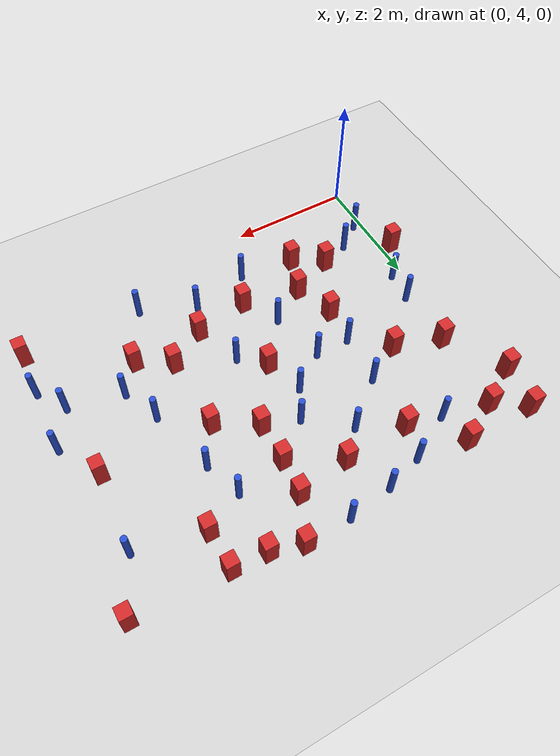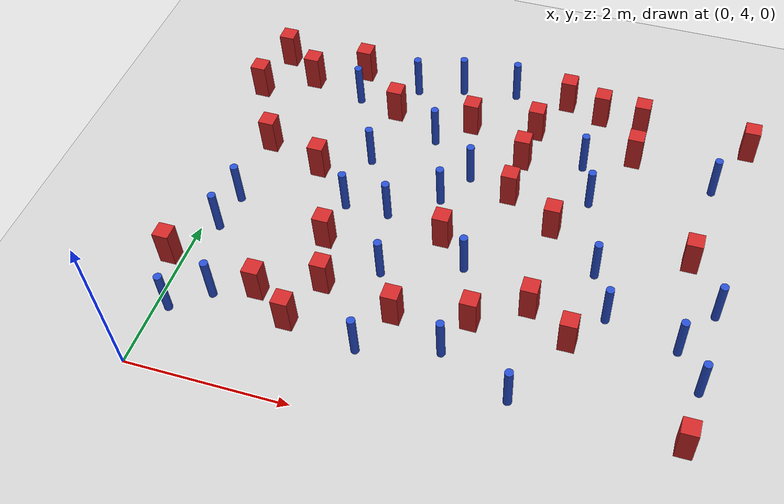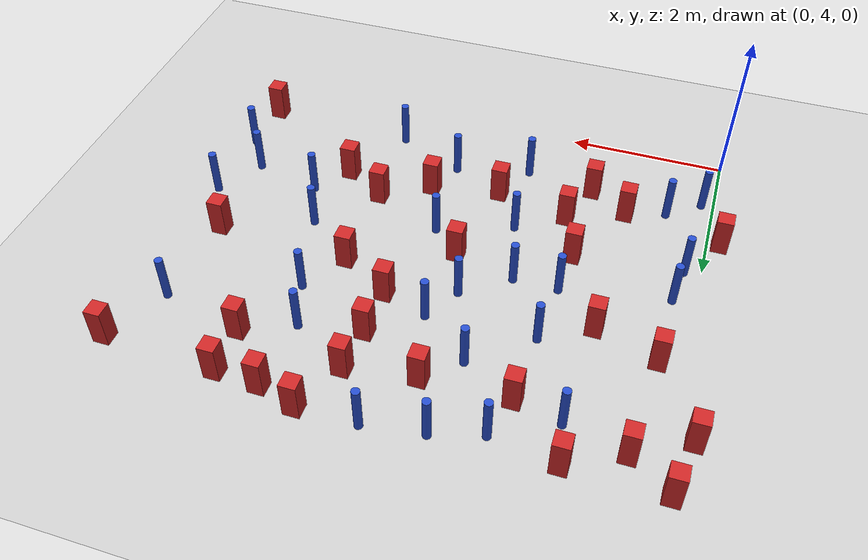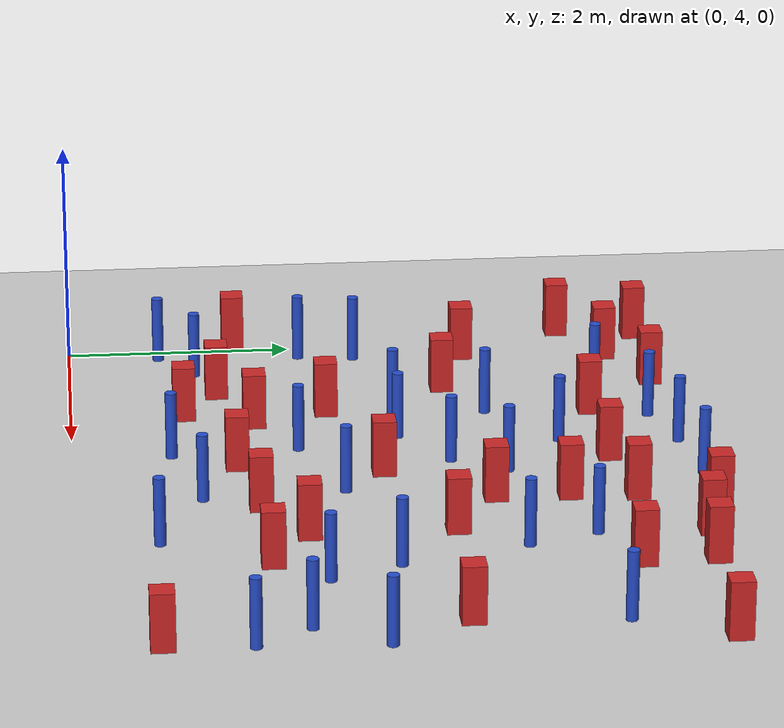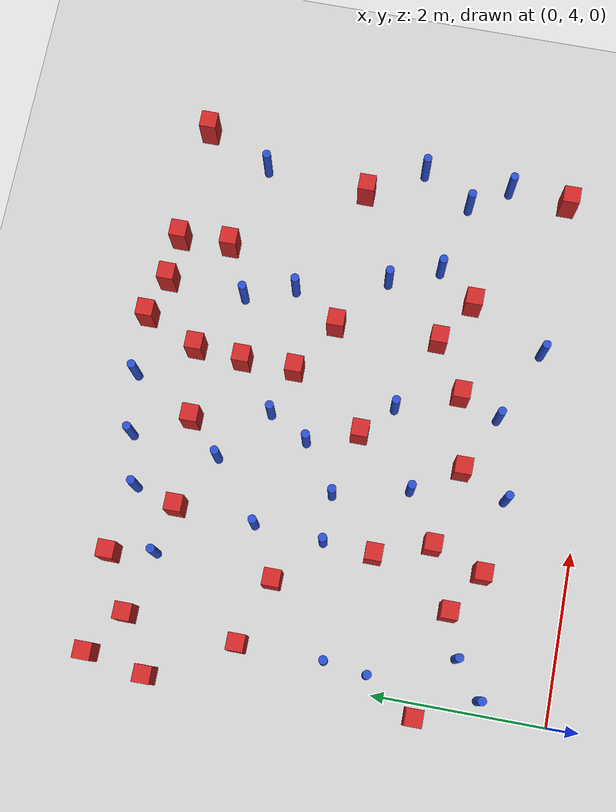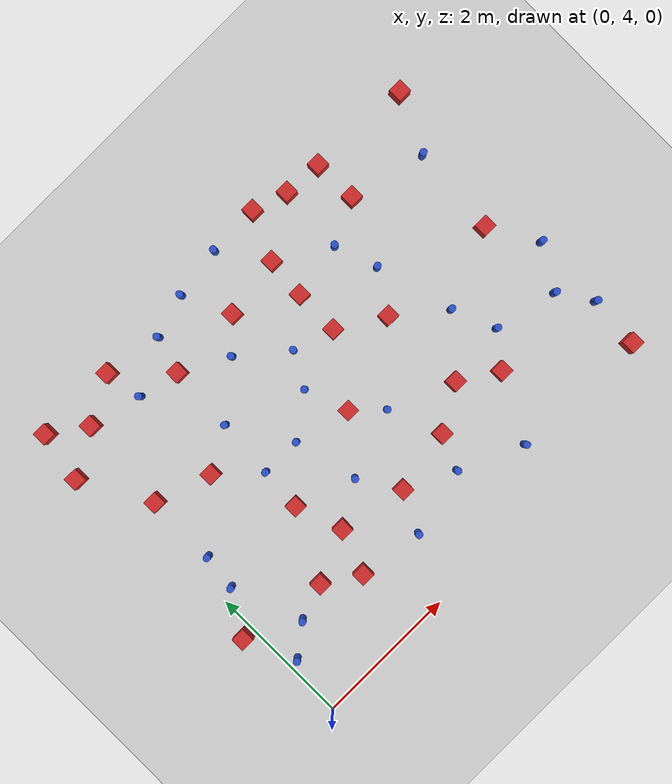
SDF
<sdf version="1.6">
 <world name="default">
  <model name="ground_plane">
   <static>1</static>
   <link name="link">
    <collision name="collision">
     <geometry><plane><normal>0 0 1</normal><size>100 100</size></plane></geometry>
     <surface><friction><ode><mu>100</mu><mu2>50</mu2></ode></friction></surface>
    </collision>
    <visual name="visual">
     <cast_shadows>0</cast_shadows>
     <geometry><plane><normal>0 0 1</normal><size>100 100</size></plane></geometry>
     <material>
      <ambient>1.0 1.0 1.0 1.0</ambient>
      <diffuse>0.8 0.8 0.8 1.0</diffuse>
      <specular>0.01 0.01 0.01 1.000000</specular>
     </material>
    </visual>
   </link>
  </model>
  <model name="pole_obstacle1">
   <static>true</static>
   <pose>4.51577572757 7.71158183973 7.38925637345e-09 -8.47170692796e-08 1.24976764786e-08 -1.74513093032e-07</pose>
   <link name="link">
    <pose>0 0 0.3 0 -0 0</pose>
    <inertial>
     <mass>1</mass>
     <inertia><ixx>0.145833</ixx><ixy>0</ixy><ixz>0</ixz><iyy>0.145833</iyy><iyz>0</iyz><izz>0.125</izz></inertia>
    </inertial>
    <collision name="collision">
     <geometry><cylinder><radius>0.05</radius><length>.6</length></cylinder></geometry>
    </collision>
    <visual name="visual">
     <geometry><cylinder><radius>0.05</radius><length>.6</length></cylinder></geometry>
     <material>
      <script><name>Gazebo/Blue</name><uri>file://media/materials/scripts/gazebo.material</uri></script>
     </material>
    </visual>
   </link>
  </model>
  <model name="square_post_obstacle1">
   <static>true</static>
   <pose>1.55641580418 4.99569527365 1.91545236811e-07 -7.35059704564e-06 1.12565212e-07 2.39332434364e-05</pose>
   <link name="link">
    <pose>0 0 0.25 0 -0 0</pose>
    <inertial>
     <mass>100</mass>
     <inertia>
      <ixx>0.166667</ixx>
      <ixy>0</ixy>
      <ixz>0</ixz>
      <iyy>0.166667</iyy>
      <iyz>0</iyz>
      <izz>0.166667</izz>
     </inertia>
    </inertial>
    <collision name="collision"><geometry><box><size>.2 .2 .5</size></box></geometry></collision>
    <visual name="visual">
     <geometry><box><size>.2 .2 .5</size></box></geometry>
     <material>
      <script><name>Gazebo/Red</name><uri>file://media/materials/scripts/gazebo.material</uri></script>
     </material>
    </visual>
   </link>
  </model>
  <model name="square_post_obstacle3">
   <static>true</static>
   <pose>0.29430283739 7.57362399298 1.91545236811e-07 -7.35059704564e-06 1.12565212e-07 2.39332434364e-05</pose>
   <link name="link">
    <pose>0 0 0.25 0 -0 0</pose>
    <inertial>
     <mass>100</mass>
     <inertia>
      <ixx>0.166667</ixx>
      <ixy>0</ixy>
      <ixz>0</ixz>
      <iyy>0.166667</iyy>
      <iyz>0</iyz>
      <izz>0.166667</izz>
     </inertia>
    </inertial>
    <collision name="collision"><geometry><box><size>.2 .2 .5</size></box></geometry></collision>
    <visual name="visual">
     <geometry><box><size>.2 .2 .5</size></box></geometry>
     <material>
      <script><name>Gazebo/Red</name><uri>file://media/materials/scripts/gazebo.material</uri></script>
     </material>
    </visual>
   </link>
  </model>
  <model name="square_post_obstacle5">
   <static>true</static>
   <pose>3.59141695978 8.73314911873 1.91545236811e-07 -7.35059704564e-06 1.12565212e-07 2.39332434364e-05</pose>
   <link name="link">
    <pose>0 0 0.25 0 -0 0</pose>
    <inertial>
     <mass>100</mass>
     <inertia>
      <ixx>0.166667</ixx>
      <ixy>0</ixy>
      <ixz>0</ixz>
      <iyy>0.166667</iyy>
      <iyz>0</iyz>
      <izz>0.166667</izz>
     </inertia>
    </inertial>
    <collision name="collision"><geometry><box><size>.2 .2 .5</size></box></geometry></collision>
    <visual name="visual">
     <geometry><box><size>.2 .2 .5</size></box></geometry>
     <material>
      <script><name>Gazebo/Red</name><uri>file://media/materials/scripts/gazebo.material</uri></script>
     </material>
    </visual>
   </link>
  </model>
  <model name="square_post_obstacle13">
   <static>true</static>
   <pose>-0.148828660306 5.50181008379 1.91545236811e-07 -7.35059704564e-06 1.12565212e-07 2.39332434364e-05</pose>
   <link name="link">
    <pose>0 0 0.25 0 -0 0</pose>
    <inertial>
     <mass>100</mass>
     <inertia>
      <ixx>0.166667</ixx>
      <ixy>0</ixy>
      <ixz>0</ixz>
      <iyy>0.166667</iyy>
      <iyz>0</iyz>
      <izz>0.166667</izz>
     </inertia>
    </inertial>
    <collision name="collision"><geometry><box><size>.2 .2 .5</size></box></geometry></collision>
    <visual name="visual">
     <geometry><box><size>.2 .2 .5</size></box></geometry>
     <material>
      <script><name>Gazebo/Red</name><uri>file://media/materials/scripts/gazebo.material</uri></script>
     </material>
    </visual>
   </link>
  </model>
  <model name="pole_obstacle21">
   <static>true</static>
   <pose>0.277985689105 6.58629493879 7.38925637345e-09 -8.47170692799e-08 1.24976765101e-08 -1.74513093014e-07</pose>
   <link name="link">
    <pose>0 0 0.3 0 -0 0</pose>
    <inertial>
     <mass>1</mass>
     <inertia><ixx>0.145833</ixx><ixy>0</ixy><ixz>0</ixz><iyy>0.145833</iyy><iyz>0</iyz><izz>0.125</izz></inertia>
    </inertial>
    <collision name="collision">
     <geometry><cylinder><radius>0.05</radius><length>.6</length></cylinder></geometry>
    </collision>
    <visual name="visual">
     <geometry><cylinder><radius>0.05</radius><length>.6</length></cylinder></geometry>
     <material>
      <script><name>Gazebo/Blue</name><uri>file://media/materials/scripts/gazebo.material</uri></script>
     </material>
    </visual>
   </link>
  </model>
  <model name="square_post_obstacle27">
   <static>true</static>
   <pose>1.06866163436 5.30170250902 1.91545236811e-07 -7.35059704564e-06 1.12565212e-07 2.39332434364e-05</pose>
   <link name="link">
    <pose>0 0 0.25 0 -0 0</pose>
    <inertial>
     <mass>100</mass>
     <inertia>
      <ixx>0.166667</ixx>
      <ixy>0</ixy>
      <ixz>0</ixz>
      <iyy>0.166667</iyy>
      <iyz>0</iyz>
      <izz>0.166667</izz>
     </inertia>
    </inertial>
    <collision name="collision"><geometry><box><size>.2 .2 .5</size></box></geometry></collision>
    <visual name="visual">
     <geometry><box><size>.2 .2 .5</size></box></geometry>
     <material>
      <script><name>Gazebo/Red</name><uri>file://media/materials/scripts/gazebo.material</uri></script>
     </material>
    </visual>
   </link>
  </model>
  <model name="pole_obstacle38">
   <static>true</static>
   <pose>2.15017637388 6.83478890423 7.38925637345e-09 -8.47170692798e-08 1.24976765033e-08 -1.74513093019e-07</pose>
   <link name="link">
    <pose>0 0 0.3 0 -0 0</pose>
    <inertial>
     <mass>1</mass>
     <inertia><ixx>0.145833</ixx><ixy>0</ixy><ixz>0</ixz><iyy>0.145833</iyy><iyz>0</iyz><izz>0.125</izz></inertia>
    </inertial>
    <collision name="collision">
     <geometry><cylinder><radius>0.05</radius><length>.6</length></cylinder></geometry>
    </collision>
    <visual name="visual">
     <geometry><cylinder><radius>0.05</radius><length>.6</length></cylinder></geometry>
     <material>
      <script><name>Gazebo/Blue</name><uri>file://media/materials/scripts/gazebo.material</uri></script>
     </material>
    </visual>
   </link>
  </model>
  <model name="pole_obstacle41">
   <static>true</static>
   <pose>3.29314873133 6.29759600114 7.38925637345e-09 -8.47170692798e-08 1.24976765033e-08 -1.74513093019e-07</pose>
   <link name="link">
    <pose>0 0 0.3 0 -0 0</pose>
    <inertial>
     <mass>1</mass>
     <inertia><ixx>0.145833</ixx><ixy>0</ixy><ixz>0</ixz><iyy>0.145833</iyy><iyz>0</iyz><izz>0.125</izz></inertia>
    </inertial>
    <collision name="collision">
     <geometry><cylinder><radius>0.05</radius><length>.6</length></cylinder></geometry>
    </collision>
    <visual name="visual">
     <geometry><cylinder><radius>0.05</radius><length>.6</length></cylinder></geometry>
     <material>
      <script><name>Gazebo/Blue</name><uri>file://media/materials/scripts/gazebo.material</uri></script>
     </material>
    </visual>
   </link>
  </model>
  <model name="square_post_obstacle33">
   <static>true</static>
   <pose>1.06384156431 7.32011465424 1.91545236811e-07 -7.35059704564e-06 1.12565212e-07 2.39332434364e-05</pose>
   <link name="link">
    <pose>0 0 0.25 0 -0 0</pose>
    <inertial>
     <mass>100</mass>
     <inertia>
      <ixx>0.166667</ixx>
      <ixy>0</ixy>
      <ixz>0</ixz>
      <iyy>0.166667</iyy>
      <iyz>0</iyz>
      <izz>0.166667</izz>
     </inertia>
    </inertial>
    <collision name="collision"><geometry><box><size>.2 .2 .5</size></box></geometry></collision>
    <visual name="visual">
     <geometry><box><size>.2 .2 .5</size></box></geometry>
     <material>
      <script><name>Gazebo/Red</name><uri>file://media/materials/scripts/gazebo.material</uri></script>
     </material>
    </visual>
   </link>
  </model>
  <model name="pole_obstacle45">
   <static>true</static>
   <pose>1.83914247486 9.08019712378 7.38925637345e-09 -8.47170692798e-08 1.24976764881e-08 -1.74513093027e-07</pose>
   <link name="link">
    <pose>0 0 0.3 0 -0 0</pose>
    <inertial>
     <mass>1</mass>
     <inertia><ixx>0.145833</ixx><ixy>0</ixy><ixz>0</ixz><iyy>0.145833</iyy><iyz>0</iyz><izz>0.125</izz></inertia>
    </inertial>
    <collision name="collision">
     <geometry><cylinder><radius>0.05</radius><length>.6</length></cylinder></geometry>
    </collision>
    <visual name="visual">
     <geometry><cylinder><radius>0.05</radius><length>.6</length></cylinder></geometry>
     <material>
      <script><name>Gazebo/Blue</name><uri>file://media/materials/scripts/gazebo.material</uri></script>
     </material>
    </visual>
   </link>
  </model>
  <model name="square_post_obstacle35">
   <static>true</static>
   <pose>-0.227539593503 8.51519601961 1.91545236811e-07 -7.35059704564e-06 1.12565212e-07 2.39332434364e-05</pose>
   <link name="link">
    <pose>0 0 0.25 0 -0 0</pose>
    <inertial>
     <mass>100</mass>
     <inertia>
      <ixx>0.166667</ixx>
      <ixy>0</ixy>
      <ixz>0</ixz>
      <iyy>0.166667</iyy>
      <iyz>0</iyz>
      <izz>0.166667</izz>
     </inertia>
    </inertial>
    <collision name="collision"><geometry><box><size>.2 .2 .5</size></box></geometry></collision>
    <visual name="visual">
     <geometry><box><size>.2 .2 .5</size></box></geometry>
     <material>
      <script><name>Gazebo/Red</name><uri>file://media/materials/scripts/gazebo.material</uri></script>
     </material>
    </visual>
   </link>
  </model>
  <model name="pole_obstacle47">
   <static>true</static>
   <pose>4.24955891132 4.70221600561 7.38925637345e-09 -8.47170692796e-08 1.24976764786e-08 -1.74513093032e-07</pose>
   <link name="link">
    <pose>0 0 0.3 0 -0 0</pose>
    <inertial>
     <mass>1</mass>
     <inertia><ixx>0.145833</ixx><ixy>0</ixy><ixz>0</ixz><iyy>0.145833</iyy><iyz>0</iyz><izz>0.125</izz></inertia>
    </inertial>
    <collision name="collision">
     <geometry><cylinder><radius>0.05</radius><length>.6</length></cylinder></geometry>
    </collision>
    <visual name="visual">
     <geometry><cylinder><radius>0.05</radius><length>.6</length></cylinder></geometry>
     <material>
      <script><name>Gazebo/Blue</name><uri>file://media/materials/scripts/gazebo.material</uri></script>
     </material>
    </visual>
   </link>
  </model>
  <model name="square_post_obstacle36">
   <static>true</static>
   <pose>6.33285098259 9.12455688765 1.91545236811e-07 -7.35059704564e-06 1.12565212e-07 2.39332434364e-05</pose>
   <link name="link">
    <pose>0 0 0.25 0 -0 0</pose>
    <inertial>
     <mass>100</mass>
     <inertia>
      <ixx>0.166667</ixx>
      <ixy>0</ixy>
      <ixz>0</ixz>
      <iyy>0.166667</iyy>
      <iyz>0</iyz>
      <izz>0.166667</izz>
     </inertia>
    </inertial>
    <collision name="collision"><geometry><box><size>.2 .2 .5</size></box></geometry></collision>
    <visual name="visual">
     <geometry><box><size>.2 .2 .5</size></box></geometry>
     <material>
      <script><name>Gazebo/Red</name><uri>file://media/materials/scripts/gazebo.material</uri></script>
     </material>
    </visual>
   </link>
  </model>
  <model name="pole_obstacle52">
   <static>true</static>
   <pose>0.569405730983 5.12614661556 7.38925637345e-09 -8.471706928e-08 1.24976765086e-08 -1.74513093015e-07</pose>
   <link name="link">
    <pose>0 0 0.3 0 -0 0</pose>
    <inertial>
     <mass>1</mass>
     <inertia><ixx>0.145833</ixx><ixy>0</ixy><ixz>0</ixz><iyy>0.145833</iyy><iyz>0</iyz><izz>0.125</izz></inertia>
    </inertial>
    <collision name="collision">
     <geometry><cylinder><radius>0.05</radius><length>.6</length></cylinder></geometry>
    </collision>
    <visual name="visual">
     <geometry><cylinder><radius>0.05</radius><length>.6</length></cylinder></geometry>
     <material>
      <script><name>Gazebo/Blue</name><uri>file://media/materials/scripts/gazebo.material</uri></script>
     </material>
    </visual>
   </link>
  </model>
  <model name="pole_obstacle57">
   <static>true</static>
   <pose>6.22690915473 5.37994023646 7.38925637345e-09 -8.47170692796e-08 1.24976764786e-08 -1.74513093032e-07</pose>
   <link name="link">
    <pose>0 0 0.3 0 -0 0</pose>
    <inertial>
     <mass>1</mass>
     <inertia><ixx>0.145833</ixx><ixy>0</ixy><ixz>0</ixz><iyy>0.145833</iyy><iyz>0</iyz><izz>0.125</izz></inertia>
    </inertial>
    <collision name="collision">
     <geometry><cylinder><radius>0.05</radius><length>.6</length></cylinder></geometry>
    </collision>
    <visual name="visual">
     <geometry><cylinder><radius>0.05</radius><length>.6</length></cylinder></geometry>
     <material>
      <script><name>Gazebo/Blue</name><uri>file://media/materials/scripts/gazebo.material</uri></script>
     </material>
    </visual>
   </link>
  </model>
  <model name="pole_obstacle61">
   <static>true</static>
   <pose>4.81104950537 6.63601387572 7.38925637345e-09 -8.47170692796e-08 1.24976764786e-08 -1.74513093032e-07</pose>
   <link name="link">
    <pose>0 0 0.3 0 -0 0</pose>
    <inertial>
     <mass>1</mass>
     <inertia><ixx>0.145833</ixx><ixy>0</ixy><ixz>0</ixz><iyy>0.145833</iyy><iyz>0</iyz><izz>0.125</izz></inertia>
    </inertial>
    <collision name="collision">
     <geometry><cylinder><radius>0.05</radius><length>.6</length></cylinder></geometry>
    </collision>
    <visual name="visual">
     <geometry><cylinder><radius>0.05</radius><length>.6</length></cylinder></geometry>
     <material>
      <script><name>Gazebo/Blue</name><uri>file://media/materials/scripts/gazebo.material</uri></script>
     </material>
    </visual>
   </link>
  </model>
  <model name="square_post_obstacle60">
   <static>true</static>
   <pose>-0.0959503923778 9.21638336714 1.91545236811e-07 -7.35059704564e-06 1.12565212e-07 2.39332434364e-05</pose>
   <link name="link">
    <pose>0 0 0.25 0 -0 0</pose>
    <inertial>
     <mass>100</mass>
     <inertia>
      <ixx>0.166667</ixx>
      <ixy>0</ixy>
      <ixz>0</ixz>
      <iyy>0.166667</iyy>
      <iyz>0</iyz>
      <izz>0.166667</izz>
     </inertia>
    </inertial>
    <collision name="collision"><geometry><box><size>.2 .2 .5</size></box></geometry></collision>
    <visual name="visual">
     <geometry><box><size>.2 .2 .5</size></box></geometry>
     <material>
      <script><name>Gazebo/Red</name><uri>file://media/materials/scripts/gazebo.material</uri></script>
     </material>
    </visual>
   </link>
  </model>
  <model name="square_post_obstacle61">
   <static>true</static>
   <pose>5.88140039578 7.09647275589 1.91545236811e-07 -7.35059704564e-06 1.12565212e-07 2.39332434364e-05</pose>
   <link name="link">
    <pose>0 0 0.25 0 -0 0</pose>
    <inertial>
     <mass>100</mass>
     <inertia>
      <ixx>0.166667</ixx>
      <ixy>0</ixy>
      <ixz>0</ixz>
      <iyy>0.166667</iyy>
      <iyz>0</iyz>
      <izz>0.166667</izz>
     </inertia>
    </inertial>
    <collision name="collision"><geometry><box><size>.2 .2 .5</size></box></geometry></collision>
    <visual name="visual">
     <geometry><box><size>.2 .2 .5</size></box></geometry>
     <material>
      <script><name>Gazebo/Red</name><uri>file://media/materials/scripts/gazebo.material</uri></script>
     </material>
    </visual>
   </link>
  </model>
  <model name="pole_obstacle72">
   <static>true</static>
   <pose>0.156683613064 4.81076261786 7.38925637345e-09 -8.471706928e-08 1.24976765036e-08 -1.74513093019e-07</pose>
   <link name="link">
    <pose>0 0 0.3 0 -0 0</pose>
    <inertial>
     <mass>1</mass>
     <inertia><ixx>0.145833</ixx><ixy>0</ixy><ixz>0</ixz><iyy>0.145833</iyy><iyz>0</iyz><izz>0.125</izz></inertia>
    </inertial>
    <collision name="collision">
     <geometry><cylinder><radius>0.05</radius><length>.6</length></cylinder></geometry>
    </collision>
    <visual name="visual">
     <geometry><cylinder><radius>0.05</radius><length>.6</length></cylinder></geometry>
     <material>
      <script><name>Gazebo/Blue</name><uri>file://media/materials/scripts/gazebo.material</uri></script>
     </material>
    </visual>
   </link>
  </model>
  <model name="pole_obstacle79">
   <static>true</static>
   <pose>5.05946964303 6.04135753721 7.38925637345e-09 -8.47170692796e-08 1.24976764786e-08 -1.74513093032e-07</pose>
   <link name="link">
    <pose>0 0 0.3 0 -0 0</pose>
    <inertial>
     <mass>1</mass>
     <inertia><ixx>0.145833</ixx><ixy>0</ixy><ixz>0</ixz><iyy>0.145833</iyy><iyz>0</iyz><izz>0.125</izz></inertia>
    </inertial>
    <collision name="collision">
     <geometry><cylinder><radius>0.05</radius><length>.6</length></cylinder></geometry>
    </collision>
    <visual name="visual">
     <geometry><cylinder><radius>0.05</radius><length>.6</length></cylinder></geometry>
     <material>
      <script><name>Gazebo/Blue</name><uri>file://media/materials/scripts/gazebo.material</uri></script>
     </material>
    </visual>
   </link>
  </model>
  <model name="square_post_obstacle68">
   <static>true</static>
   <pose>3.57830064842 5.56625606528 1.91545236811e-07 -7.35059704564e-06 1.12565212e-07 2.39332434364e-05</pose>
   <link name="link">
    <pose>0 0 0.25 0 -0 0</pose>
    <inertial>
     <mass>100</mass>
     <inertia>
      <ixx>0.166667</ixx>
      <ixy>0</ixy>
      <ixz>0</ixz>
      <iyy>0.166667</iyy>
      <iyz>0</iyz>
      <izz>0.166667</izz>
     </inertia>
    </inertial>
    <collision name="collision"><geometry><box><size>.2 .2 .5</size></box></geometry></collision>
    <visual name="visual">
     <geometry><box><size>.2 .2 .5</size></box></geometry>
     <material>
      <script><name>Gazebo/Red</name><uri>file://media/materials/scripts/gazebo.material</uri></script>
     </material>
    </visual>
   </link>
  </model>
  <model name="square_post_obstacle70">
   <static>true</static>
   <pose>4.36419245751 9.23066238553 1.91545236811e-07 -7.35059704564e-06 1.12565212e-07 2.39332434364e-05</pose>
   <link name="link">
    <pose>0 0 0.25 0 -0 0</pose>
    <inertial>
     <mass>100</mass>
     <inertia>
      <ixx>0.166667</ixx>
      <ixy>0</ixy>
      <ixz>0</ixz>
      <iyy>0.166667</iyy>
      <iyz>0</iyz>
      <izz>0.166667</izz>
     </inertia>
    </inertial>
    <collision name="collision"><geometry><box><size>.2 .2 .5</size></box></geometry></collision>
    <visual name="visual">
     <geometry><box><size>.2 .2 .5</size></box></geometry>
     <material>
      <script><name>Gazebo/Red</name><uri>file://media/materials/scripts/gazebo.material</uri></script>
     </material>
    </visual>
   </link>
  </model>
  <model name="pole_obstacle84">
   <static>true</static>
   <pose>2.35890247457 5.9560831942 7.38925637345e-09 -8.47170692798e-08 1.24976765033e-08 -1.74513093019e-07</pose>
   <link name="link">
    <pose>0 0 0.3 0 -0 0</pose>
    <inertial>
     <mass>1</mass>
     <inertia><ixx>0.145833</ixx><ixy>0</ixy><ixz>0</ixz><iyy>0.145833</iyy><iyz>0</iyz><izz>0.125</izz></inertia>
    </inertial>
    <collision name="collision">
     <geometry><cylinder><radius>0.05</radius><length>.6</length></cylinder></geometry>
    </collision>
    <visual name="visual">
     <geometry><cylinder><radius>0.05</radius><length>.6</length></cylinder></geometry>
     <material>
      <script><name>Gazebo/Blue</name><uri>file://media/materials/scripts/gazebo.material</uri></script>
     </material>
    </visual>
   </link>
  </model>
  <model name="pole_obstacle93">
   <static>true</static>
   <pose>6.27130642862 6.43331373568 7.38925637345e-09 -8.47170692796e-08 1.24976764786e-08 -1.74513093032e-07</pose>
   <link name="link">
    <pose>0 0 0.3 0 -0 0</pose>
    <inertial>
     <mass>1</mass>
     <inertia><ixx>0.145833</ixx><ixy>0</ixy><ixz>0</ixz><iyy>0.145833</iyy><iyz>0</iyz><izz>0.125</izz></inertia>
    </inertial>
    <collision name="collision">
     <geometry><cylinder><radius>0.05</radius><length>.6</length></cylinder></geometry>
    </collision>
    <visual name="visual">
     <geometry><cylinder><radius>0.05</radius><length>.6</length></cylinder></geometry>
     <material>
      <script><name>Gazebo/Blue</name><uri>file://media/materials/scripts/gazebo.material</uri></script>
     </material>
    </visual>
   </link>
  </model>
  <model name="square_post_obstacle90">
   <static>true</static>
   <pose>0.399790210977 8.87579887917 1.91545236811e-07 -7.35059704564e-06 1.12565212e-07 2.39332434364e-05</pose>
   <link name="link">
    <pose>0 0 0.25 0 -0 0</pose>
    <inertial>
     <mass>100</mass>
     <inertia>
      <ixx>0.166667</ixx>
      <ixy>0</ixy>
      <ixz>0</ixz>
      <iyy>0.166667</iyy>
      <iyz>0</iyz>
      <izz>0.166667</izz>
     </inertia>
    </inertial>
    <collision name="collision"><geometry><box><size>.2 .2 .5</size></box></geometry></collision>
    <visual name="visual">
     <geometry><box><size>.2 .2 .5</size></box></geometry>
     <material>
      <script><name>Gazebo/Red</name><uri>file://media/materials/scripts/gazebo.material</uri></script>
     </material>
    </visual>
   </link>
  </model>
  <model name="square_post_obstacle95">
   <static>true</static>
   <pose>1.55512874493 6.24568410285 1.91545236811e-07 -7.35059704564e-06 1.12565212e-07 2.39332434364e-05</pose>
   <link name="link">
    <pose>0 0 0.25 0 -0 0</pose>
    <inertial>
     <mass>100</mass>
     <inertia>
      <ixx>0.166667</ixx>
      <ixy>0</ixy>
      <ixz>0</ixz>
      <iyy>0.166667</iyy>
      <iyz>0</iyz>
      <izz>0.166667</izz>
     </inertia>
    </inertial>
    <collision name="collision"><geometry><box><size>.2 .2 .5</size></box></geometry></collision>
    <visual name="visual">
     <geometry><box><size>.2 .2 .5</size></box></geometry>
     <material>
      <script><name>Gazebo/Red</name><uri>file://media/materials/scripts/gazebo.material</uri></script>
     </material>
    </visual>
   </link>
  </model>
  <model name="square_post_obstacle96">
   <static>true</static>
   <pose>1.69349934584 8.57203581515 1.91545236811e-07 -7.35059704564e-06 1.12565212e-07 2.39332434364e-05</pose>
   <link name="link">
    <pose>0 0 0.25 0 -0 0</pose>
    <inertial>
     <mass>100</mass>
     <inertia>
      <ixx>0.166667</ixx>
      <ixy>0</ixy>
      <ixz>0</ixz>
      <iyy>0.166667</iyy>
      <iyz>0</iyz>
      <izz>0.166667</izz>
     </inertia>
    </inertial>
    <collision name="collision"><geometry><box><size>.2 .2 .5</size></box></geometry></collision>
    <visual name="visual">
     <geometry><box><size>.2 .2 .5</size></box></geometry>
     <material>
      <script><name>Gazebo/Red</name><uri>file://media/materials/scripts/gazebo.material</uri></script>
     </material>
    </visual>
   </link>
  </model>
  <model name="pole_obstacle106">
   <static>true</static>
   <pose>5.92559049315 5.83805199193 7.38925637345e-09 -8.47170692796e-08 1.24976764786e-08 -1.74513093032e-07</pose>
   <link name="link">
    <pose>0 0 0.3 0 -0 0</pose>
    <inertial>
     <mass>1</mass>
     <inertia><ixx>0.145833</ixx><ixy>0</ixy><ixz>0</ixz><iyy>0.145833</iyy><iyz>0</iyz><izz>0.125</izz></inertia>
    </inertial>
    <collision name="collision">
     <geometry><cylinder><radius>0.05</radius><length>.6</length></cylinder></geometry>
    </collision>
    <visual name="visual">
     <geometry><cylinder><radius>0.05</radius><length>.6</length></cylinder></geometry>
     <material>
      <script><name>Gazebo/Blue</name><uri>file://media/materials/scripts/gazebo.material</uri></script>
     </material>
    </visual>
   </link>
  </model>
  <model name="pole_obstacle110">
   <static>true</static>
   <pose>3.37929121527 5.08858811006 7.38925637345e-09 -8.47170692798e-08 1.24976765033e-08 -1.74513093019e-07</pose>
   <link name="link">
    <pose>0 0 0.3 0 -0 0</pose>
    <inertial>
     <mass>1</mass>
     <inertia><ixx>0.145833</ixx><ixy>0</ixy><ixz>0</ixz><iyy>0.145833</iyy><iyz>0</iyz><izz>0.125</izz></inertia>
    </inertial>
    <collision name="collision">
     <geometry><cylinder><radius>0.05</radius><length>.6</length></cylinder></geometry>
    </collision>
    <visual name="visual">
     <geometry><cylinder><radius>0.05</radius><length>.6</length></cylinder></geometry>
     <material>
      <script><name>Gazebo/Blue</name><uri>file://media/materials/scripts/gazebo.material</uri></script>
     </material>
    </visual>
   </link>
  </model>
  <model name="square_post_obstacle103">
   <static>true</static>
   <pose>4.16329947336 7.15691032851 1.91545236811e-07 -7.35059704564e-06 1.12565212e-07 2.39332434364e-05</pose>
   <link name="link">
    <pose>0 0 0.25 0 -0 0</pose>
    <inertial>
     <mass>100</mass>
     <inertia>
      <ixx>0.166667</ixx>
      <ixy>0</ixy>
      <ixz>0</ixz>
      <iyy>0.166667</iyy>
      <iyz>0</iyz>
      <izz>0.166667</izz>
     </inertia>
    </inertial>
    <collision name="collision"><geometry><box><size>.2 .2 .5</size></box></geometry></collision>
    <visual name="visual">
     <geometry><box><size>.2 .2 .5</size></box></geometry>
     <material>
      <script><name>Gazebo/Red</name><uri>file://media/materials/scripts/gazebo.material</uri></script>
     </material>
    </visual>
   </link>
  </model>
  <model name="square_post_obstacle104">
   <static>true</static>
   <pose>6.16934077275 4.66263866976 1.91545236811e-07 -7.35059704564e-06 1.12565212e-07 2.39332434364e-05</pose>
   <link name="link">
    <pose>0 0 0.25 0 -0 0</pose>
    <inertial>
     <mass>100</mass>
     <inertia>
      <ixx>0.166667</ixx>
      <ixy>0</ixy>
      <ixz>0</ixz>
      <iyy>0.166667</iyy>
      <iyz>0</iyz>
      <izz>0.166667</izz>
     </inertia>
    </inertial>
    <collision name="collision"><geometry><box><size>.2 .2 .5</size></box></geometry></collision>
    <visual name="visual">
     <geometry><box><size>.2 .2 .5</size></box></geometry>
     <material>
      <script><name>Gazebo/Red</name><uri>file://media/materials/scripts/gazebo.material</uri></script>
     </material>
    </visual>
   </link>
  </model>
  <model name="square_post_obstacle113">
   <static>true</static>
   <pose>1.04069621328 9.21105768558 1.91545236811e-07 -7.35059704564e-06 1.12565212e-07 2.39332434364e-05</pose>
   <link name="link">
    <pose>0 0 0.25 0 -0 0</pose>
    <inertial>
     <mass>100</mass>
     <inertia>
      <ixx>0.166667</ixx>
      <ixy>0</ixy>
      <ixz>0</ixz>
      <iyy>0.166667</iyy>
      <iyz>0</iyz>
      <izz>0.166667</izz>
     </inertia>
    </inertial>
    <collision name="collision"><geometry><box><size>.2 .2 .5</size></box></geometry></collision>
    <visual name="visual">
     <geometry><box><size>.2 .2 .5</size></box></geometry>
     <material>
      <script><name>Gazebo/Red</name><uri>file://media/materials/scripts/gazebo.material</uri></script>
     </material>
    </visual>
   </link>
  </model>
  <model name="pole_obstacle119">
   <static>true</static>
   <pose>2.97066657524 7.71199235054 7.38925637345e-09 -8.47170692798e-08 1.24976765033e-08 -1.74513093019e-07</pose>
   <link name="link">
    <pose>0 0 0.3 0 -0 0</pose>
    <inertial>
     <mass>1</mass>
     <inertia><ixx>0.145833</ixx><ixy>0</ixy><ixz>0</ixz><iyy>0.145833</iyy><iyz>0</iyz><izz>0.125</izz></inertia>
    </inertial>
    <collision name="collision">
     <geometry><cylinder><radius>0.05</radius><length>.6</length></cylinder></geometry>
    </collision>
    <visual name="visual">
     <geometry><cylinder><radius>0.05</radius><length>.6</length></cylinder></geometry>
     <material>
      <script><name>Gazebo/Blue</name><uri>file://media/materials/scripts/gazebo.material</uri></script>
     </material>
    </visual>
   </link>
  </model>
  <model name="pole_obstacle121">
   <static>true</static>
   <pose>2.43694502519 9.25951426042 7.38925637345e-09 -8.47170692793e-08 1.24976764408e-08 -1.74513093041e-07</pose>
   <link name="link">
    <pose>0 0 0.3 0 -0 0</pose>
    <inertial>
     <mass>1</mass>
     <inertia><ixx>0.145833</ixx><ixy>0</ixy><ixz>0</ixz><iyy>0.145833</iyy><iyz>0</iyz><izz>0.125</izz></inertia>
    </inertial>
    <collision name="collision">
     <geometry><cylinder><radius>0.05</radius><length>.6</length></cylinder></geometry>
    </collision>
    <visual name="visual">
     <geometry><cylinder><radius>0.05</radius><length>.6</length></cylinder></geometry>
     <material>
      <script><name>Gazebo/Blue</name><uri>file://media/materials/scripts/gazebo.material</uri></script>
     </material>
    </visual>
   </link>
  </model>
  <model name="square_post_obstacle124">
   <static>true</static>
   <pose>3.53357006768 7.5373785289 1.91545236811e-07 -7.35059704564e-06 1.12565212e-07 2.39332434364e-05</pose>
   <link name="link">
    <pose>0 0 0.25 0 -0 0</pose>
    <inertial>
     <mass>100</mass>
     <inertia>
      <ixx>0.166667</ixx>
      <ixy>0</ixy>
      <ixz>0</ixz>
      <iyy>0.166667</iyy>
      <iyz>0</iyz>
      <izz>0.166667</izz>
     </inertia>
    </inertial>
    <collision name="collision"><geometry><box><size>.2 .2 .5</size></box></geometry></collision>
    <visual name="visual">
     <geometry><box><size>.2 .2 .5</size></box></geometry>
     <material>
      <script><name>Gazebo/Red</name><uri>file://media/materials/scripts/gazebo.material</uri></script>
     </material>
    </visual>
   </link>
  </model>
  <model name="square_post_obstacle130">
   <static>true</static>
   <pose>2.92130528824 6.64804140978 1.91545236811e-07 -7.35059704564e-06 1.12565212e-07 2.39332434364e-05</pose>
   <link name="link">
    <pose>0 0 0.25 0 -0 0</pose>
    <inertial>
     <mass>100</mass>
     <inertia>
      <ixx>0.166667</ixx>
      <ixy>0</ixy>
      <ixz>0</ixz>
      <iyy>0.166667</iyy>
      <iyz>0</iyz>
      <izz>0.166667</izz>
     </inertia>
    </inertial>
    <collision name="collision"><geometry><box><size>.2 .2 .5</size></box></geometry></collision>
    <visual name="visual">
     <geometry><box><size>.2 .2 .5</size></box></geometry>
     <material>
      <script><name>Gazebo/Red</name><uri>file://media/materials/scripts/gazebo.material</uri></script>
     </material>
    </visual>
   </link>
  </model>
  <model name="square_post_obstacle140">
   <static>true</static>
   <pose>4.18310438557 5.92994341206 1.91545236811e-07 -7.35059704564e-06 1.12565212e-07 2.39332434364e-05</pose>
   <link name="link">
    <pose>0 0 0.25 0 -0 0</pose>
    <inertial>
     <mass>100</mass>
     <inertia>
      <ixx>0.166667</ixx>
      <ixy>0</ixy>
      <ixz>0</ixz>
      <iyy>0.166667</iyy>
      <iyz>0</iyz>
      <izz>0.166667</izz>
     </inertia>
    </inertial>
    <collision name="collision"><geometry><box><size>.2 .2 .5</size></box></geometry></collision>
    <visual name="visual">
     <geometry><box><size>.2 .2 .5</size></box></geometry>
     <material>
      <script><name>Gazebo/Red</name><uri>file://media/materials/scripts/gazebo.material</uri></script>
     </material>
    </visual>
   </link>
  </model>
  <model name="pole_obstacle147">
   <static>true</static>
   <pose>0.21075045136 6.08766357661 7.38925637345e-09 -8.471706928e-08 1.24976765124e-08 -1.74513093014e-07</pose>
   <link name="link">
    <pose>0 0 0.3 0 -0 0</pose>
    <inertial>
     <mass>1</mass>
     <inertia><ixx>0.145833</ixx><ixy>0</ixy><ixz>0</ixz><iyy>0.145833</iyy><iyz>0</iyz><izz>0.125</izz></inertia>
    </inertial>
    <collision name="collision">
     <geometry><cylinder><radius>0.05</radius><length>.6</length></cylinder></geometry>
    </collision>
    <visual name="visual">
     <geometry><cylinder><radius>0.05</radius><length>.6</length></cylinder></geometry>
     <material>
      <script><name>Gazebo/Blue</name><uri>file://media/materials/scripts/gazebo.material</uri></script>
     </material>
    </visual>
   </link>
  </model>
  <model name="pole_obstacle167">
   <static>true</static>
   <pose>1.12650298423 8.69792093797 7.38925637345e-09 -8.47170692798e-08 1.24976764881e-08 -1.74513093027e-07</pose>
   <link name="link">
    <pose>0 0 0.3 0 -0 0</pose>
    <inertial>
     <mass>1</mass>
     <inertia><ixx>0.145833</ixx><ixy>0</ixy><ixz>0</ixz><iyy>0.145833</iyy><iyz>0</iyz><izz>0.125</izz></inertia>
    </inertial>
    <collision name="collision">
     <geometry><cylinder><radius>0.05</radius><length>.6</length></cylinder></geometry>
    </collision>
    <visual name="visual">
     <geometry><cylinder><radius>0.05</radius><length>.6</length></cylinder></geometry>
     <material>
      <script><name>Gazebo/Blue</name><uri>file://media/materials/scripts/gazebo.material</uri></script>
     </material>
    </visual>
   </link>
  </model>
  <model name="square_post_obstacle171">
   <static>true</static>
   <pose>3.54161999107 8.16533694219 1.91545236811e-07 -7.35059704564e-06 1.12565212e-07 2.39332434364e-05</pose>
   <link name="link">
    <pose>0 0 0.25 0 -0 0</pose>
    <inertial>
     <mass>100</mass>
     <inertia>
      <ixx>0.166667</ixx>
      <ixy>0</ixy>
      <ixz>0</ixz>
      <iyy>0.166667</iyy>
      <iyz>0</iyz>
      <izz>0.166667</izz>
     </inertia>
    </inertial>
    <collision name="collision"><geometry><box><size>.2 .2 .5</size></box></geometry></collision>
    <visual name="visual">
     <geometry><box><size>.2 .2 .5</size></box></geometry>
     <material>
      <script><name>Gazebo/Red</name><uri>file://media/materials/scripts/gazebo.material</uri></script>
     </material>
    </visual>
   </link>
  </model>
  <model name="pole_obstacle172">
   <static>true</static>
   <pose>5.97432345691 8.33540814205 7.38925637345e-09 -8.471706928e-08 1.24976765081e-08 -1.74513093015e-07</pose>
   <link name="link">
    <pose>0 0 0.3 0 -0 0</pose>
    <inertial>
     <mass>1</mass>
     <inertia><ixx>0.145833</ixx><ixy>0</ixy><ixz>0</ixz><iyy>0.145833</iyy><iyz>0</iyz><izz>0.125</izz></inertia>
    </inertial>
    <collision name="collision">
     <geometry><cylinder><radius>0.05</radius><length>.6</length></cylinder></geometry>
    </collision>
    <visual name="visual">
     <geometry><cylinder><radius>0.05</radius><length>.6</length></cylinder></geometry>
     <material>
      <script><name>Gazebo/Blue</name><uri>file://media/materials/scripts/gazebo.material</uri></script>
     </material>
    </visual>
   </link>
  </model>
  <model name="square_post_obstacle178">
   <static>true</static>
   <pose>4.92270463522 8.59171798217 1.91545236811e-07 -7.35059704564e-06 1.12565212e-07 2.39332434364e-05</pose>
   <link name="link">
    <pose>0 0 0.25 0 -0 0</pose>
    <inertial>
     <mass>100</mass>
     <inertia>
      <ixx>0.166667</ixx>
      <ixy>0</ixy>
      <ixz>0</ixz>
      <iyy>0.166667</iyy>
      <iyz>0</iyz>
      <izz>0.166667</izz>
     </inertia>
    </inertial>
    <collision name="collision"><geometry><box><size>.2 .2 .5</size></box></geometry></collision>
    <visual name="visual">
     <geometry><box><size>.2 .2 .5</size></box></geometry>
     <material>
      <script><name>Gazebo/Red</name><uri>file://media/materials/scripts/gazebo.material</uri></script>
     </material>
    </visual>
   </link>
  </model>
  <model name="pole_obstacle180">
   <static>true</static>
   <pose>1.59243682516 6.83706526324 7.38925637345e-09 -8.47170692799e-08 1.24976765033e-08 -1.74513093018e-07</pose>
   <link name="link">
    <pose>0 0 0.3 0 -0 0</pose>
    <inertial>
     <mass>1</mass>
     <inertia><ixx>0.145833</ixx><ixy>0</ixy><ixz>0</ixz><iyy>0.145833</iyy><iyz>0</iyz><izz>0.125</izz></inertia>
    </inertial>
    <collision name="collision">
     <geometry><cylinder><radius>0.05</radius><length>.6</length></cylinder></geometry>
    </collision>
    <visual name="visual">
     <geometry><cylinder><radius>0.05</radius><length>.6</length></cylinder></geometry>
     <material>
      <script><name>Gazebo/Blue</name><uri>file://media/materials/scripts/gazebo.material</uri></script>
     </material>
    </visual>
   </link>
  </model>
  <model name="square_post_obstacle181">
   <static>true</static>
   <pose>4.70981244747 5.60110287177 1.91545236811e-07 -7.35059704564e-06 1.12565212e-07 2.39332434364e-05</pose>
   <link name="link">
    <pose>0 0 0.25 0 -0 0</pose>
    <inertial>
     <mass>100</mass>
     <inertia>
      <ixx>0.166667</ixx>
      <ixy>0</ixy>
      <ixz>0</ixz>
      <iyy>0.166667</iyy>
      <iyz>0</iyz>
      <izz>0.166667</izz>
     </inertia>
    </inertial>
    <collision name="collision"><geometry><box><size>.2 .2 .5</size></box></geometry></collision>
    <visual name="visual">
     <geometry><box><size>.2 .2 .5</size></box></geometry>
     <material>
      <script><name>Gazebo/Red</name><uri>file://media/materials/scripts/gazebo.material</uri></script>
     </material>
    </visual>
   </link>
  </model>
  <model name="pole_obstacle184">
   <static>true</static>
   <pose>3.15665338301 9.3643856291 7.38925637345e-09 -8.47170692793e-08 1.24976764408e-08 -1.74513093041e-07</pose>
   <link name="link">
    <pose>0 0 0.3 0 -0 0</pose>
    <inertial>
     <mass>1</mass>
     <inertia><ixx>0.145833</ixx><ixy>0</ixy><ixz>0</ixz><iyy>0.145833</iyy><iyz>0</iyz><izz>0.125</izz></inertia>
    </inertial>
    <collision name="collision">
     <geometry><cylinder><radius>0.05</radius><length>.6</length></cylinder></geometry>
    </collision>
    <visual name="visual">
     <geometry><cylinder><radius>0.05</radius><length>.6</length></cylinder></geometry>
     <material>
      <script><name>Gazebo/Blue</name><uri>file://media/materials/scripts/gazebo.material</uri></script>
     </material>
    </visual>
   </link>
  </model>
  <model name="square_post_obstacle186">
   <static>true</static>
   <pose>2.70413466953 5.40860333935 1.91545236811e-07 -7.35059704564e-06 1.12565212e-07 2.39332434364e-05</pose>
   <link name="link">
    <pose>0 0 0.25 0 -0 0</pose>
    <inertial>
     <mass>100</mass>
     <inertia>
      <ixx>0.166667</ixx>
      <ixy>0</ixy>
      <ixz>0</ixz>
      <iyy>0.166667</iyy>
      <iyz>0</iyz>
      <izz>0.166667</izz>
     </inertia>
    </inertial>
    <collision name="collision"><geometry><box><size>.2 .2 .5</size></box></geometry></collision>
    <visual name="visual">
     <geometry><box><size>.2 .2 .5</size></box></geometry>
     <material>
      <script><name>Gazebo/Red</name><uri>file://media/materials/scripts/gazebo.material</uri></script>
     </material>
    </visual>
   </link>
  </model>
  <model name="pole_obstacle186">
   <static>true</static>
   <pose>1.65093157417 7.64951883153 7.38925637345e-09 -8.47170692799e-08 1.24976765033e-08 -1.74513093018e-07</pose>
   <link name="link">
    <pose>0 0 0.3 0 -0 0</pose>
    <inertial>
     <mass>1</mass>
     <inertia><ixx>0.145833</ixx><ixy>0</ixy><ixz>0</ixz><iyy>0.145833</iyy><iyz>0</iyz><izz>0.125</izz></inertia>
    </inertial>
    <collision name="collision">
     <geometry><cylinder><radius>0.05</radius><length>.6</length></cylinder></geometry>
    </collision>
    <visual name="visual">
     <geometry><cylinder><radius>0.05</radius><length>.6</length></cylinder></geometry>
     <material>
      <script><name>Gazebo/Blue</name><uri>file://media/materials/scripts/gazebo.material</uri></script>
     </material>
    </visual>
   </link>
  </model>
  <model name="square_post_obstacle188">
   <static>true</static>
   <pose>4.90682892056 9.19843262169 1.91545236811e-07 -7.35059704564e-06 1.12565212e-07 2.39332434364e-05</pose>
   <link name="link">
    <pose>0 0 0.25 0 -0 0</pose>
    <inertial>
     <mass>100</mass>
     <inertia>
      <ixx>0.166667</ixx>
      <ixy>0</ixy>
      <ixz>0</ixz>
      <iyy>0.166667</iyy>
      <iyz>0</iyz>
      <izz>0.166667</izz>
     </inertia>
    </inertial>
    <collision name="collision"><geometry><box><size>.2 .2 .5</size></box></geometry></collision>
    <visual name="visual">
     <geometry><box><size>.2 .2 .5</size></box></geometry>
     <material>
      <script><name>Gazebo/Red</name><uri>file://media/materials/scripts/gazebo.material</uri></script>
     </material>
    </visual>
   </link>
  </model>
  <model name="pole_obstacle194">
   <static>true</static>
   <pose>4.31524753989 8.30001521131 7.38925637345e-09 -8.471706928e-08 1.24976765081e-08 -1.74513093015e-07</pose>
   <link name="link">
    <pose>0 0 0.3 0 -0 0</pose>
    <inertial>
     <mass>1</mass>
     <inertia><ixx>0.145833</ixx><ixy>0</ixy><ixz>0</ixz><iyy>0.145833</iyy><iyz>0</iyz><izz>0.125</izz></inertia>
    </inertial>
    <collision name="collision">
     <geometry><cylinder><radius>0.05</radius><length>.6</length></cylinder></geometry>
    </collision>
    <visual name="visual">
     <geometry><cylinder><radius>0.05</radius><length>.6</length></cylinder></geometry>
     <material>
      <script><name>Gazebo/Blue</name><uri>file://media/materials/scripts/gazebo.material</uri></script>
     </material>
    </visual>
   </link>
  </model>
  <model name="pole_obstacle206">
   <static>true</static>
   <pose>2.71251633001 7.24533770372 7.38925637345e-09 -8.47170692798e-08 1.24976765033e-08 -1.74513093019e-07</pose>
   <link name="link">
    <pose>0 0 0.3 0 -0 0</pose>
    <inertial>
     <mass>1</mass>
     <inertia><ixx>0.145833</ixx><ixy>0</ixy><ixz>0</ixz><iyy>0.145833</iyy><iyz>0</iyz><izz>0.125</izz></inertia>
    </inertial>
    <collision name="collision">
     <geometry><cylinder><radius>0.05</radius><length>.6</length></cylinder></geometry>
    </collision>
    <visual name="visual">
     <geometry><cylinder><radius>0.05</radius><length>.6</length></cylinder></geometry>
     <material>
      <script><name>Gazebo/Blue</name><uri>file://media/materials/scripts/gazebo.material</uri></script>
     </material>
    </visual>
   </link>
  </model>
  <model name="pole_obstacle208">
   <static>true</static>
   <pose>2.43844187683 4.85750554617 7.38925637345e-09 -8.47170692798e-08 1.24976765033e-08 -1.74513093019e-07</pose>
   <link name="link">
    <pose>0 0 0.3 0 -0 0</pose>
    <inertial>
     <mass>1</mass>
     <inertia><ixx>0.145833</ixx><ixy>0</ixy><ixz>0</ixz><iyy>0.145833</iyy><iyz>0</iyz><izz>0.125</izz></inertia>
    </inertial>
    <collision name="collision">
     <geometry><cylinder><radius>0.05</radius><length>.6</length></cylinder></geometry>
    </collision>
    <visual name="visual">
     <geometry><cylinder><radius>0.05</radius><length>.6</length></cylinder></geometry>
     <material>
      <script><name>Gazebo/Blue</name><uri>file://media/materials/scripts/gazebo.material</uri></script>
     </material>
    </visual>
   </link>
  </model>
  <model name="pole_obstacle209">
   <static>true</static>
   <pose>2.34349203974 8.2232825565 7.38925637345e-09 -8.47170692793e-08 1.24976764408e-08 -1.74513093041e-07</pose>
   <link name="link">
    <pose>0 0 0.3 0 -0 0</pose>
    <inertial>
     <mass>1</mass>
     <inertia><ixx>0.145833</ixx><ixy>0</ixy><ixz>0</ixz><iyy>0.145833</iyy><iyz>0</iyz><izz>0.125</izz></inertia>
    </inertial>
    <collision name="collision">
     <geometry><cylinder><radius>0.05</radius><length>.6</length></cylinder></geometry>
    </collision>
    <visual name="visual">
     <geometry><cylinder><radius>0.05</radius><length>.6</length></cylinder></geometry>
     <material>
      <script><name>Gazebo/Blue</name><uri>file://media/materials/scripts/gazebo.material</uri></script>
     </material>
    </visual>
   </link>
  </model>
  <model name="square_post_obstacle225">
   <static>true</static>
   <pose>2.7416899648 8.60818998808 1.91545236811e-07 -7.35059704564e-06 1.12565212e-07 2.39332434364e-05</pose>
   <link name="link">
    <pose>0 0 0.25 0 -0 0</pose>
    <inertial>
     <mass>100</mass>
     <inertia>
      <ixx>0.166667</ixx>
      <ixy>0</ixy>
      <ixz>0</ixz>
      <iyy>0.166667</iyy>
      <iyz>0</iyz>
      <izz>0.166667</izz>
     </inertia>
    </inertial>
    <collision name="collision"><geometry><box><size>.2 .2 .5</size></box></geometry></collision>
    <visual name="visual">
     <geometry><box><size>.2 .2 .5</size></box></geometry>
     <material>
      <script><name>Gazebo/Red</name><uri>file://media/materials/scripts/gazebo.material</uri></script>
     </material>
    </visual>
   </link>
  </model>
  <model name="square_post_obstacle229">
   <static>true</static>
   <pose>3.8810999648 9.37954998808 1.91545236811e-07 -7.35059704564e-06 1.12565212e-07 2.39332434364e-05</pose>
   <link name="link">
    <pose>0 0 0.25 0 -0 0</pose>
    <inertial>
     <mass>100</mass>
     <inertia>
      <ixx>0.166667</ixx>
      <ixy>0</ixy>
      <ixz>0</ixz>
      <iyy>0.166667</iyy>
      <iyz>0</iyz>
      <izz>0.166667</izz>
     </inertia>
    </inertial>
    <collision name="collision"><geometry><box><size>.2 .2 .5</size></box></geometry></collision>
    <visual name="visual">
     <geometry><box><size>.2 .2 .5</size></box></geometry>
     <material>
      <script><name>Gazebo/Red</name><uri>file://media/materials/scripts/gazebo.material</uri></script>
     </material>
    </visual>
   </link>
  </model>
  <model name="square_post_obstacle231">
   <static>true</static>
   <pose>1.7782999648 5.60322998808 1.91545236811e-07 -7.35059704564e-06 1.12565212e-07 2.39332434364e-05</pose>
   <link name="link">
    <pose>0 0 0.25 0 -0 0</pose>
    <inertial>
     <mass>100</mass>
     <inertia>
      <ixx>0.166667</ixx>
      <ixy>0</ixy>
      <ixz>0</ixz>
      <iyy>0.166667</iyy>
      <iyz>0</iyz>
      <izz>0.166667</izz>
     </inertia>
    </inertial>
    <collision name="collision"><geometry><box><size>.2 .2 .5</size></box></geometry></collision>
    <visual name="visual">
     <geometry><box><size>.2 .2 .5</size></box></geometry>
     <material>
      <script><name>Gazebo/Red</name><uri>file://media/materials/scripts/gazebo.material</uri></script>
     </material>
    </visual>
   </link>
  </model>
 </world>
</sdf>
